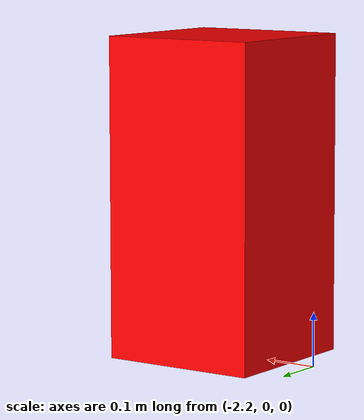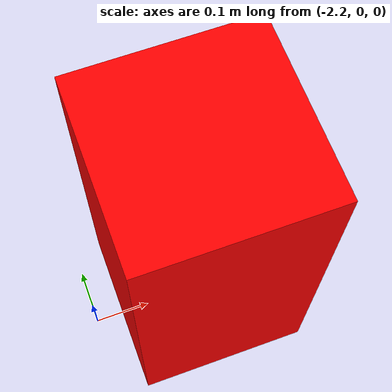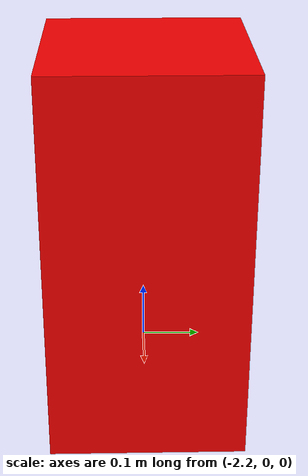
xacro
<?xml version="1.0"?>
<robot name="cube" xmlns:xacro="http://www.ros.org/wiki/xacro">

  <!-- 定义立方体的尺寸 -->
  <xacro:property name="cube_size" value="0.6" />

  <!-- 定义立方体的惯性 -->
  <xacro:property name="mass" value="10.0" />
  <xacro:property name="ixx" value="${mass * cube_size * cube_size / 6}" />
  <xacro:property name="iyy" value="${mass * cube_size * cube_size / 6}" />
  <xacro:property name="izz" value="${mass * cube_size * cube_size / 6}" />

  <link name="cube_link">
    <visual>
      <origin rpy="0 0 0" xyz="0 0 0"/>
      <geometry>
        <box size="0.3 0.3 ${cube_size}" />
      </geometry>
      <material name="red">
        <color rgba="1 0 0 1" />
      </material>
    </visual>

    <collision>
      <origin rpy="0 0 0" xyz="0 0 0"/>
      <geometry>
        <box size="${cube_size} ${cube_size} ${cube_size}" />
      </geometry>
    </collision>

    <inertial>
      <origin rpy="0 0 0" xyz="0 0 0"/>
      <mass value="${mass}" />
      <inertia ixx="${ixx}" ixy="0.0" ixz="0.0" iyy="${iyy}" iyz="0.0" izz="${izz}" />
    </inertial>
  </link>

  <joint name="cube_joint" type="fixed">
    <parent link="world"/>
    <child link="cube_link"/>
    <origin xyz="-2 0 0.3" rpy="0 0 0"/>
  </joint>

  <link name="world"/>

</robot>
